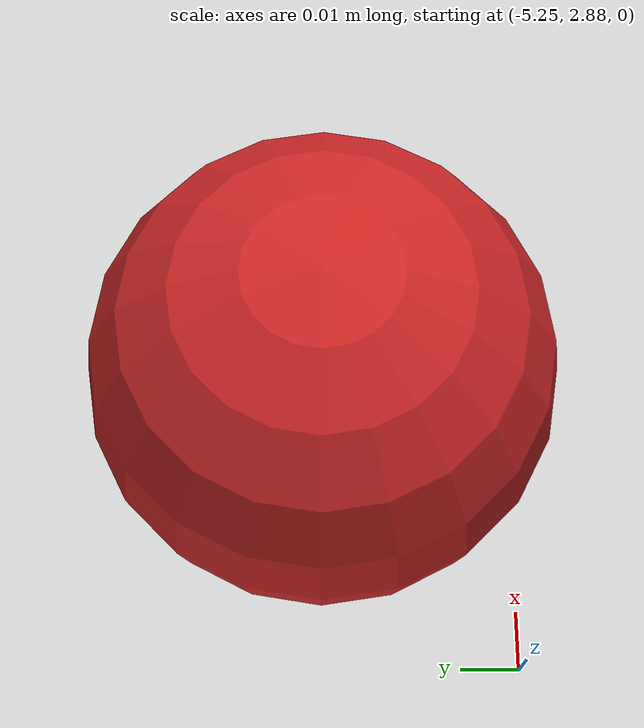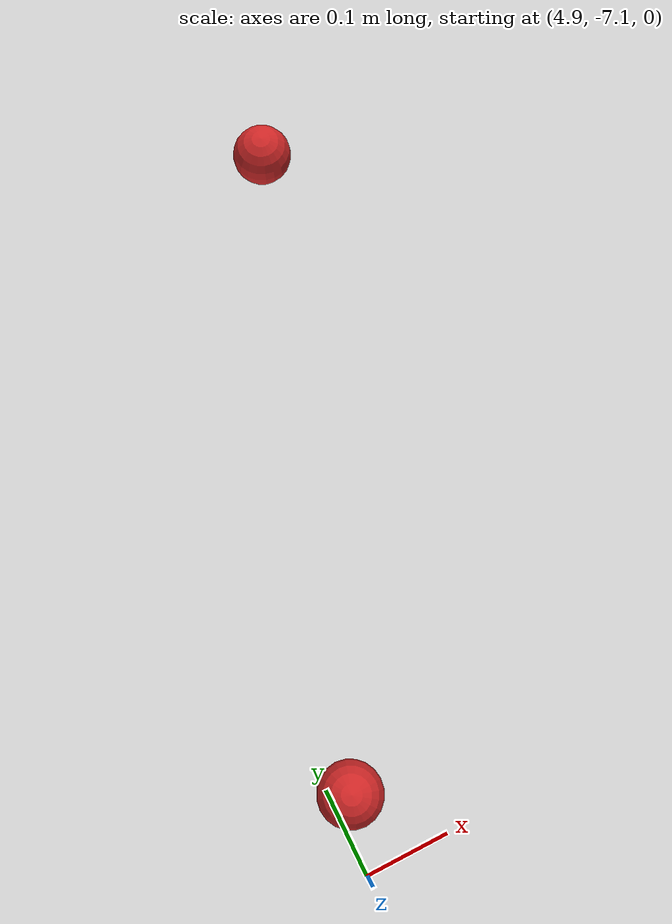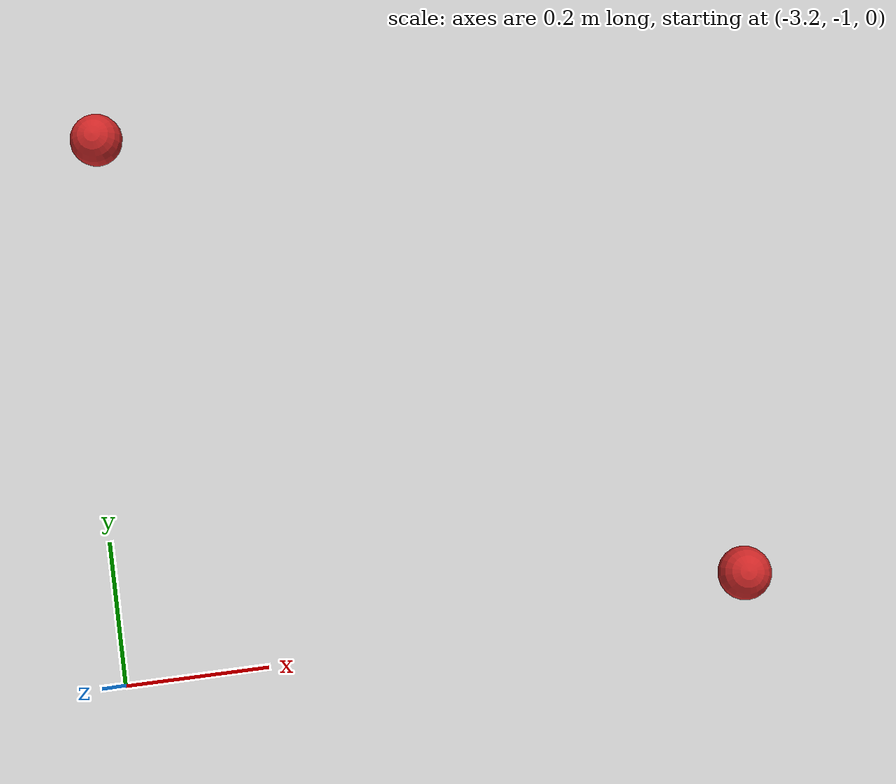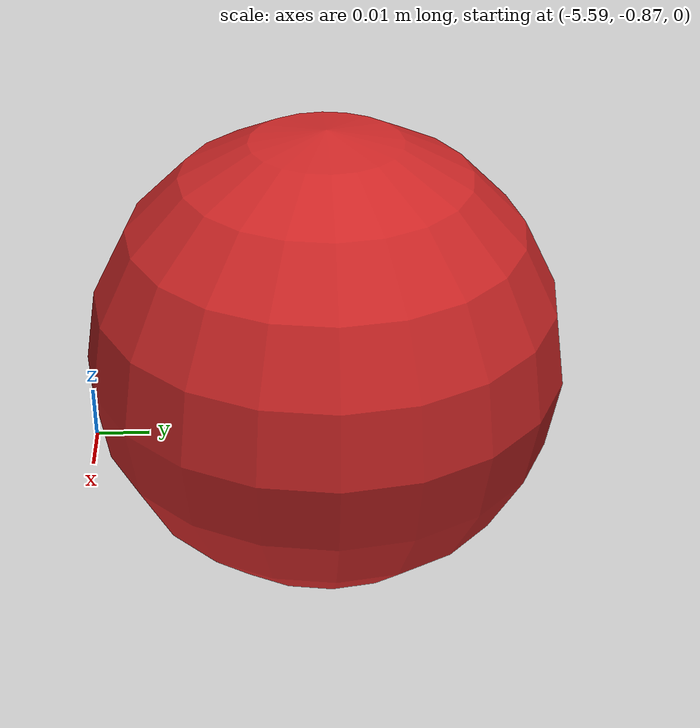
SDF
<sdf version="1.6">
 <world name="default">
  <light name="sun" type="directional">
   <pose>0 0 10 0 -0 0</pose>
   <diffuse>0.8 0.8 0.8 1</diffuse>
   <specular>0.2 0.2 0.2 1</specular>
   <attenuation>
    <range>1000</range>
    <constant>0.9</constant>
    <linear>0.01</linear>
    <quadratic>0.001</quadratic>
   </attenuation>
   <direction>-0.5 0.1 -0.9</direction>
  </light>
  <model name="ground_plane">
   <static>1</static>
   <link name="link">
    <collision name="collision">
     <geometry><plane><normal>0 0 1</normal><size>100 100</size></plane></geometry>
     <surface>
      <contact><collide_bitmask>65535</collide_bitmask></contact>
      <friction><ode><mu>100</mu><mu2>50</mu2></ode></friction>
     </surface>
    </collision>
    <visual name="visual">
     <cast_shadows>0</cast_shadows>
     <geometry><plane><normal>0 0 1</normal><size>100 100</size></plane></geometry>
     <material>
      <script><uri>file://media/materials/scripts/gazebo.material</uri><name>Gazebo/Grey</name></script>
     </material>
    </visual>
   </link>
  </model>
  <gravity>0 0 -9.8</gravity>
  <magnetic_field>6e-06 2.3e-05 -4.2e-05</magnetic_field>
  <atmosphere type="adiabatic"/>
  <physics name="default_physics" default="0" type="ode">
   <max_step_size>0.001</max_step_size>
   <real_time_factor>1</real_time_factor>
   <real_time_update_rate>1000</real_time_update_rate>
  </physics>
  <scene><ambient>0.4 0.4 0.4 1</ambient><background>0.7 0.7 0.7 1</background><shadows>1</shadows></scene>
  <audio><device>default</device></audio>
  <spherical_coordinates>
   <surface_model>EARTH_WGS84</surface_model>
   <latitude_deg>0</latitude_deg>
   <longitude_deg>0</longitude_deg>
   <elevation>0</elevation>
   <heading_deg>0</heading_deg>
  </spherical_coordinates>
  <model name="tennis_ball1_clone_0">
   <pose>5.18162 -6.26016 -0.001906 0 -0 0</pose>
   <link name="cricket_ball::link">
    <pose>0 0 0.0375 0 -0 0</pose>
    <inertial>
     <mass>0.1467</mass>
     <inertia>
      <ixx>8.25187e-05</ixx>
      <ixy>0</ixy>
      <ixz>0</ixz>
      <iyy>8.25187e-05</iyy>
      <iyz>0</iyz>
      <izz>8.25187e-05</izz>
     </inertia>
    </inertial>
    <collision name="collision">
     <geometry><sphere><radius>0.0375</radius></sphere></geometry>
     <surface>
      <contact>
       <poissons_ratio>0.347</poissons_ratio>
       <elastic_modulus>8.8e+09</elastic_modulus>
       <ode><kp>100000</kp><kd>100</kd><max_vel>100</max_vel><min_depth>0.001</min_depth></ode>
      </contact>
      <friction>
       <torsional>
        <coefficient>1</coefficient>
        <use_patch_radius>0</use_patch_radius>
        <surface_radius>0.01</surface_radius>
       </torsional>
      </friction>
     </surface>
    </collision>
    <visual name="visual">
     <geometry><sphere><radius>0.0375</radius></sphere></geometry>
     <material>
      <script><uri>file://media/materials/scripts/gazebo.material</uri><name>Gazebo/Red</name></script>
     </material>
    </visual>
    <velocity_decay><linear>0</linear><angular>0.005</angular></velocity_decay>
   </link>
   <static>1</static>
  </model>
  <model name="tennis_ball1_clone_1">
   <pose>-5.55193 -0.827937 0.00341 0 -0 0</pose>
   <link name="cricket_ball::link">
    <pose>0 0 0.0375 0 -0 0</pose>
    <inertial>
     <mass>0.1467</mass>
     <inertia>
      <ixx>8.25187e-05</ixx>
      <ixy>0</ixy>
      <ixz>0</ixz>
      <iyy>8.25187e-05</iyy>
      <iyz>0</iyz>
      <izz>8.25187e-05</izz>
     </inertia>
    </inertial>
    <collision name="collision">
     <geometry><sphere><radius>0.0375</radius></sphere></geometry>
     <surface>
      <contact>
       <poissons_ratio>0.347</poissons_ratio>
       <elastic_modulus>8.8e+09</elastic_modulus>
       <ode><kp>100000</kp><kd>100</kd><max_vel>100</max_vel><min_depth>0.001</min_depth></ode>
      </contact>
      <friction>
       <torsional>
        <coefficient>1</coefficient>
        <use_patch_radius>0</use_patch_radius>
        <surface_radius>0.01</surface_radius>
       </torsional>
      </friction>
     </surface>
    </collision>
    <visual name="visual">
     <geometry><sphere><radius>0.0375</radius></sphere></geometry>
     <material>
      <script><uri>file://media/materials/scripts/gazebo.material</uri><name>Gazebo/Red</name></script>
     </material>
    </visual>
    <velocity_decay><linear>0</linear><angular>0.005</angular></velocity_decay>
   </link>
   <static>1</static>
  </model>
  <model name="tennis_ball1_clone_2">
   <pose>1.72861 -6.7497 0.004723 0 -0 0</pose>
   <link name="cricket_ball::link">
    <pose>0 0 0.0375 0 -0 0</pose>
    <inertial>
     <mass>0.1467</mass>
     <inertia>
      <ixx>8.25187e-05</ixx>
      <ixy>0</ixy>
      <ixz>0</ixz>
      <iyy>8.25187e-05</iyy>
      <iyz>0</iyz>
      <izz>8.25187e-05</izz>
     </inertia>
    </inertial>
    <collision name="collision">
     <geometry><sphere><radius>0.0375</radius></sphere></geometry>
     <surface>
      <contact>
       <poissons_ratio>0.347</poissons_ratio>
       <elastic_modulus>8.8e+09</elastic_modulus>
       <ode><kp>100000</kp><kd>100</kd><max_vel>100</max_vel><min_depth>0.001</min_depth></ode>
      </contact>
      <friction>
       <torsional>
        <coefficient>1</coefficient>
        <use_patch_radius>0</use_patch_radius>
        <surface_radius>0.01</surface_radius>
       </torsional>
      </friction>
     </surface>
    </collision>
    <visual name="visual">
     <geometry><sphere><radius>0.0375</radius></sphere></geometry>
     <material>
      <script><uri>file://media/materials/scripts/gazebo.material</uri><name>Gazebo/Red</name></script>
     </material>
    </visual>
    <velocity_decay><linear>0</linear><angular>0.005</angular></velocity_decay>
   </link>
   <static>1</static>
  </model>
  <model name="tennis_ball1_clone_3">
   <pose>6.25718 -4.29237 0.001973 0 -0 0</pose>
   <link name="cricket_ball::link">
    <pose>0 0 0.0375 0 -0 0</pose>
    <inertial>
     <mass>0.1467</mass>
     <inertia>
      <ixx>8.25187e-05</ixx>
      <ixy>0</ixy>
      <ixz>0</ixz>
      <iyy>8.25187e-05</iyy>
      <iyz>0</iyz>
      <izz>8.25187e-05</izz>
     </inertia>
    </inertial>
    <collision name="collision">
     <geometry><sphere><radius>0.0375</radius></sphere></geometry>
     <surface>
      <contact>
       <poissons_ratio>0.347</poissons_ratio>
       <elastic_modulus>8.8e+09</elastic_modulus>
       <ode><kp>100000</kp><kd>100</kd><max_vel>100</max_vel><min_depth>0.001</min_depth></ode>
      </contact>
      <friction>
       <torsional>
        <coefficient>1</coefficient>
        <use_patch_radius>0</use_patch_radius>
        <surface_radius>0.01</surface_radius>
       </torsional>
      </friction>
     </surface>
    </collision>
    <visual name="visual">
     <geometry><sphere><radius>0.0375</radius></sphere></geometry>
     <material>
      <script><uri>file://media/materials/scripts/gazebo.material</uri><name>Gazebo/Red</name></script>
     </material>
    </visual>
    <velocity_decay><linear>0</linear><angular>0.005</angular></velocity_decay>
   </link>
   <static>1</static>
  </model>
  <model name="tennis_ball1_clone_4">
   <pose>-2.33106 -0.960008 0.001203 0 -0 0</pose>
   <link name="cricket_ball::link">
    <pose>0 0 0.0375 0 -0 0</pose>
    <inertial>
     <mass>0.1467</mass>
     <inertia>
      <ixx>8.25187e-05</ixx>
      <ixy>0</ixy>
      <ixz>0</ixz>
      <iyy>8.25187e-05</iyy>
      <iyz>0</iyz>
      <izz>8.25187e-05</izz>
     </inertia>
    </inertial>
    <collision name="collision">
     <geometry><sphere><radius>0.0375</radius></sphere></geometry>
     <surface>
      <contact>
       <poissons_ratio>0.347</poissons_ratio>
       <elastic_modulus>8.8e+09</elastic_modulus>
       <ode><kp>100000</kp><kd>100</kd><max_vel>100</max_vel><min_depth>0.001</min_depth></ode>
      </contact>
      <friction>
       <torsional>
        <coefficient>1</coefficient>
        <use_patch_radius>0</use_patch_radius>
        <surface_radius>0.01</surface_radius>
       </torsional>
      </friction>
     </surface>
    </collision>
    <visual name="visual">
     <geometry><sphere><radius>0.0375</radius></sphere></geometry>
     <material>
      <script><uri>file://media/materials/scripts/gazebo.material</uri><name>Gazebo/Red</name></script>
     </material>
    </visual>
    <velocity_decay><linear>0</linear><angular>0.005</angular></velocity_decay>
   </link>
   <static>1</static>
  </model>
  <model name="tennis_ball1_clone_5">
   <pose>-3.15224 -0.229142 0.002576 0 -0 0</pose>
   <link name="cricket_ball::link">
    <pose>0 0 0.0375 0 -0 0</pose>
    <inertial>
     <mass>0.1467</mass>
     <inertia>
      <ixx>8.25187e-05</ixx>
      <ixy>0</ixy>
      <ixz>0</ixz>
      <iyy>8.25187e-05</iyy>
      <iyz>0</iyz>
      <izz>8.25187e-05</izz>
     </inertia>
    </inertial>
    <collision name="collision">
     <geometry><sphere><radius>0.0375</radius></sphere></geometry>
     <surface>
      <contact>
       <poissons_ratio>0.347</poissons_ratio>
       <elastic_modulus>8.8e+09</elastic_modulus>
       <ode><kp>100000</kp><kd>100</kd><max_vel>100</max_vel><min_depth>0.001</min_depth></ode>
      </contact>
      <friction>
       <torsional>
        <coefficient>1</coefficient>
        <use_patch_radius>0</use_patch_radius>
        <surface_radius>0.01</surface_radius>
       </torsional>
      </friction>
     </surface>
    </collision>
    <visual name="visual">
     <geometry><sphere><radius>0.0375</radius></sphere></geometry>
     <material>
      <script><uri>file://media/materials/scripts/gazebo.material</uri><name>Gazebo/Red</name></script>
     </material>
    </visual>
    <velocity_decay><linear>0</linear><angular>0.005</angular></velocity_decay>
   </link>
   <static>1</static>
  </model>
  <model name="tennis_ball1_clone_6">
   <pose>-4.04436 5.26337 -0.004033 0 -0 0</pose>
   <link name="cricket_ball::link">
    <pose>0 0 0.0375 0 -0 0</pose>
    <inertial>
     <mass>0.1467</mass>
     <inertia>
      <ixx>8.25187e-05</ixx>
      <ixy>0</ixy>
      <ixz>0</ixz>
      <iyy>8.25187e-05</iyy>
      <iyz>0</iyz>
      <izz>8.25187e-05</izz>
     </inertia>
    </inertial>
    <collision name="collision">
     <geometry><sphere><radius>0.0375</radius></sphere></geometry>
     <surface>
      <contact>
       <poissons_ratio>0.347</poissons_ratio>
       <elastic_modulus>8.8e+09</elastic_modulus>
       <ode><kp>100000</kp><kd>100</kd><max_vel>100</max_vel><min_depth>0.001</min_depth></ode>
      </contact>
      <friction>
       <torsional>
        <coefficient>1</coefficient>
        <use_patch_radius>0</use_patch_radius>
        <surface_radius>0.01</surface_radius>
       </torsional>
      </friction>
     </surface>
    </collision>
    <visual name="visual">
     <geometry><sphere><radius>0.0375</radius></sphere></geometry>
     <material>
      <script><uri>file://media/materials/scripts/gazebo.material</uri><name>Gazebo/Red</name></script>
     </material>
    </visual>
    <velocity_decay><linear>0</linear><angular>0.005</angular></velocity_decay>
   </link>
   <static>1</static>
  </model>
  <model name="tennis_ball1_clone_7">
   <pose>-5.20826 2.91384 -0.003562 0 -0 0</pose>
   <link name="cricket_ball::link">
    <pose>0 0 0.0375 0 -0 0</pose>
    <inertial>
     <mass>0.1467</mass>
     <inertia>
      <ixx>8.25187e-05</ixx>
      <ixy>0</ixy>
      <ixz>0</ixz>
      <iyy>8.25187e-05</iyy>
      <iyz>0</iyz>
      <izz>8.25187e-05</izz>
     </inertia>
    </inertial>
    <collision name="collision">
     <geometry><sphere><radius>0.0375</radius></sphere></geometry>
     <surface>
      <contact>
       <poissons_ratio>0.347</poissons_ratio>
       <elastic_modulus>8.8e+09</elastic_modulus>
       <ode><kp>100000</kp><kd>100</kd><max_vel>100</max_vel><min_depth>0.001</min_depth></ode>
      </contact>
      <friction>
       <torsional>
        <coefficient>1</coefficient>
        <use_patch_radius>0</use_patch_radius>
        <surface_radius>0.01</surface_radius>
       </torsional>
      </friction>
     </surface>
    </collision>
    <visual name="visual">
     <geometry><sphere><radius>0.0375</radius></sphere></geometry>
     <material>
      <script><uri>file://media/materials/scripts/gazebo.material</uri><name>Gazebo/Red</name></script>
     </material>
    </visual>
    <velocity_decay><linear>0</linear><angular>0.005</angular></velocity_decay>
   </link>
   <static>1</static>
  </model>
  <model name="tennis_ball1_clone_8">
   <pose>2.00683 -4.31815 -0.001782 0 -0 0</pose>
   <link name="cricket_ball::link">
    <pose>0 0 0.0375 0 -0 0</pose>
    <inertial>
     <mass>0.1467</mass>
     <inertia>
      <ixx>8.25187e-05</ixx>
      <ixy>0</ixy>
      <ixz>0</ixz>
      <iyy>8.25187e-05</iyy>
      <iyz>0</iyz>
      <izz>8.25187e-05</izz>
     </inertia>
    </inertial>
    <collision name="collision">
     <geometry><sphere><radius>0.0375</radius></sphere></geometry>
     <surface>
      <contact>
       <poissons_ratio>0.347</poissons_ratio>
       <elastic_modulus>8.8e+09</elastic_modulus>
       <ode><kp>100000</kp><kd>100</kd><max_vel>100</max_vel><min_depth>0.001</min_depth></ode>
      </contact>
      <friction>
       <torsional>
        <coefficient>1</coefficient>
        <use_patch_radius>0</use_patch_radius>
        <surface_radius>0.01</surface_radius>
       </torsional>
      </friction>
     </surface>
    </collision>
    <visual name="visual">
     <geometry><sphere><radius>0.0375</radius></sphere></geometry>
     <material>
      <script><uri>file://media/materials/scripts/gazebo.material</uri><name>Gazebo/Red</name></script>
     </material>
    </visual>
    <velocity_decay><linear>0</linear><angular>0.005</angular></velocity_decay>
   </link>
   <static>1</static>
  </model>
  <model name="tennis_ball1_clone_9">
   <pose>4.92186 -7.01372 -0.002641 0 -0 0</pose>
   <link name="cricket_ball::link">
    <pose>0 0 0.0375 0 -0 0</pose>
    <inertial>
     <mass>0.1467</mass>
     <inertia>
      <ixx>8.25187e-05</ixx>
      <ixy>0</ixy>
      <ixz>0</ixz>
      <iyy>8.25187e-05</iyy>
      <iyz>0</iyz>
      <izz>8.25187e-05</izz>
     </inertia>
    </inertial>
    <collision name="collision">
     <geometry><sphere><radius>0.0375</radius></sphere></geometry>
     <surface>
      <contact>
       <poissons_ratio>0.347</poissons_ratio>
       <elastic_modulus>8.8e+09</elastic_modulus>
       <ode><kp>100000</kp><kd>100</kd><max_vel>100</max_vel><min_depth>0.001</min_depth></ode>
      </contact>
      <friction>
       <torsional>
        <coefficient>1</coefficient>
        <use_patch_radius>0</use_patch_radius>
        <surface_radius>0.01</surface_radius>
       </torsional>
      </friction>
     </surface>
    </collision>
    <visual name="visual">
     <geometry><sphere><radius>0.0375</radius></sphere></geometry>
     <material>
      <script><uri>file://media/materials/scripts/gazebo.material</uri><name>Gazebo/Red</name></script>
     </material>
    </visual>
    <velocity_decay><linear>0</linear><angular>0.005</angular></velocity_decay>
   </link>
   <static>1</static>
  </model>
 </world>
</sdf>
